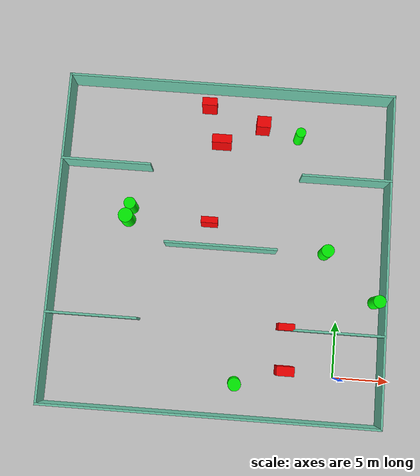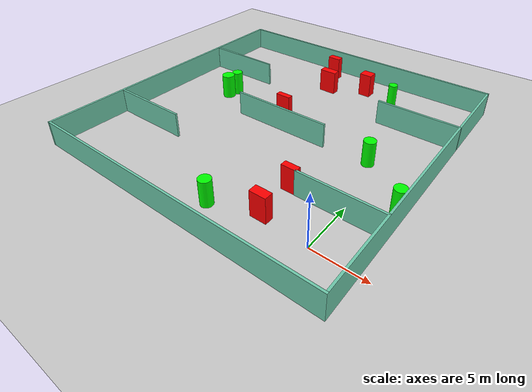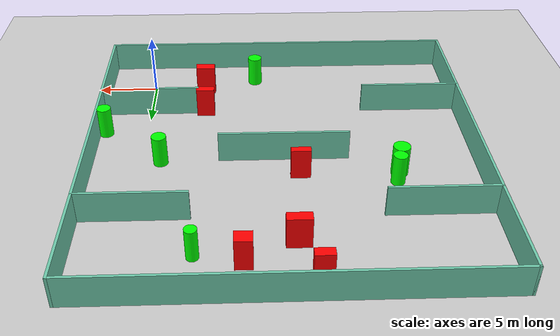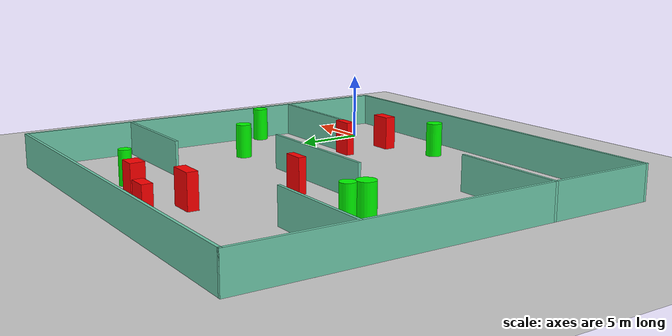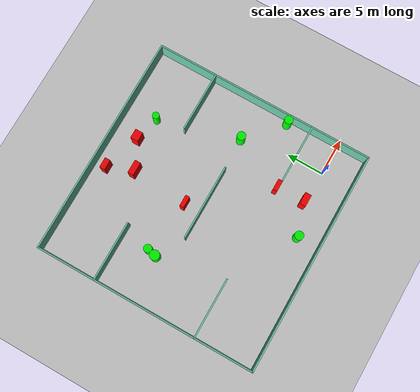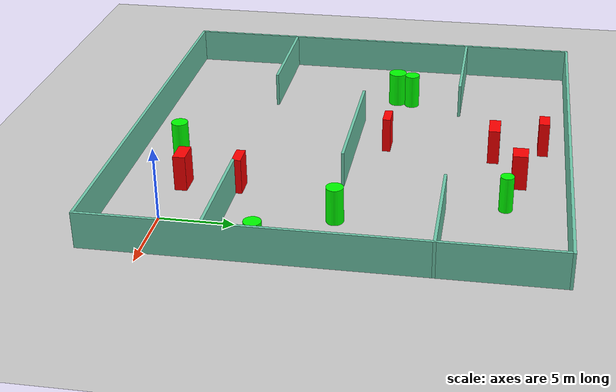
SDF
<sdf version="1.7">
 <world name="default">
  <light name="sun" type="directional">
   <pose>0 0 10 0 -0 0</pose>
   <diffuse>0.8 0.8 0.8 1</diffuse>
   <specular>0.2 0.2 0.2 1</specular>
   <attenuation>
    <range>1000</range>
    <constant>0.9</constant>
    <linear>0.01</linear>
    <quadratic>0.001</quadratic>
   </attenuation>
   <direction>-0.5 0.1 -0.9</direction>
   <spot><inner_angle>0</inner_angle><outer_angle>0</outer_angle><falloff>0</falloff></spot>
  </light>
  <model name="ground_plane">
   <static>1</static>
   <link name="link">
    <collision name="collision">
     <geometry><plane><normal>0 0 1</normal><size>100 100</size></plane></geometry>
     <surface>
      <contact><collide_bitmask>65535</collide_bitmask></contact>
      <friction><ode><mu>100</mu><mu2>50</mu2></ode></friction>
     </surface>
    </collision>
    <visual name="visual">
     <cast_shadows>0</cast_shadows>
     <geometry><plane><normal>0 0 1</normal><size>100 100</size></plane></geometry>
     <material>
      <script><uri>file://media/materials/scripts/gazebo.material</uri><name>Gazebo/Grey</name></script>
     </material>
    </visual>
   </link>
  </model>
  <gravity>0 0 -9.8</gravity>
  <magnetic_field>6e-06 2.3e-05 -4.2e-05</magnetic_field>
  <atmosphere type="adiabatic"/>
  <physics type="ode">
   <max_step_size>0.001</max_step_size>
   <real_time_factor>1</real_time_factor>
   <real_time_update_rate>1000</real_time_update_rate>
  </physics>
  <scene><ambient>0.4 0.4 0.4 1</ambient><background>0.7 0.7 0.7 1</background><shadows>1</shadows></scene>
  <spherical_coordinates>
   <surface_model>EARTH_WGS84</surface_model>
   <latitude_deg>0</latitude_deg>
   <longitude_deg>0</longitude_deg>
   <elevation>0</elevation>
   <heading_deg>0</heading_deg>
  </spherical_coordinates>
  <model name="my_base_walls">
   <link name="Wall_10">
    <collision name="Wall_10_Collision">
     <geometry><box><size>8.2 0.2 2.5</size></box></geometry>
     <pose>0 0 1.25 0 -0 0</pose>
    </collision>
    <visual name="Wall_10_Visual">
     <pose>0 0 1.25 0 -0 0</pose>
     <geometry><box><size>8.2 0.2 2.5</size></box></geometry>
     <material>
      <script><uri>file://media/materials/scripts/gazebo.material</uri><name>Gazebo/Grey</name></script>
      <ambient>0.435294 0.796078 0.67451 1</ambient>
     </material>
     <meta><layer>0</layer></meta>
    </visual>
    <pose>-11 -7 0 0 -0 0</pose>
   </link>
   <link name="Wall_12">
    <collision name="Wall_12_Collision">
     <geometry><box><size>8.2 0.2 2.5</size></box></geometry>
     <pose>0 0 1.25 0 -0 0</pose>
    </collision>
    <visual name="Wall_12_Visual">
     <pose>0 0 1.25 0 -0 0</pose>
     <geometry><box><size>8.2 0.2 2.5</size></box></geometry>
     <material>
      <script><uri>file://media/materials/scripts/gazebo.material</uri><name>Gazebo/Grey</name></script>
      <ambient>0.435294 0.796078 0.67451 1</ambient>
     </material>
     <meta><layer>0</layer></meta>
    </visual>
    <pose>-11 7 0 0 -0 0</pose>
   </link>
   <link name="Wall_14">
    <collision name="Wall_14_Collision">
     <geometry><box><size>8.2 0.2 2.5</size></box></geometry>
     <pose>0 0 1.25 0 -0 0</pose>
    </collision>
    <visual name="Wall_14_Visual">
     <pose>0 0 1.25 0 -0 0</pose>
     <geometry><box><size>8.2 0.2 2.5</size></box></geometry>
     <material>
      <script><uri>file://media/materials/scripts/gazebo.material</uri><name>Gazebo/Grey</name></script>
      <ambient>0.435294 0.796078 0.67451 1</ambient>
     </material>
     <meta><layer>0</layer></meta>
    </visual>
    <pose>11 7 0 0 -0 3.14159</pose>
   </link>
   <link name="Wall_16">
    <collision name="Wall_16_Collision">
     <geometry><box><size>10.2 0.2 2.5</size></box></geometry>
     <pose>0 0 1.25 0 -0 0</pose>
    </collision>
    <visual name="Wall_16_Visual">
     <pose>0 0 1.25 0 -0 0</pose>
     <geometry><box><size>10.2 0.2 2.5</size></box></geometry>
     <material>
      <script><uri>file://media/materials/scripts/gazebo.material</uri><name>Gazebo/Grey</name></script>
      <ambient>0.435294 0.796078 0.67451 1</ambient>
     </material>
     <meta><layer>0</layer></meta>
    </visual>
    <pose>0 0 0 0 -0 3.14159</pose>
   </link>
   <link name="Wall_2">
    <collision name="Wall_2_Collision">
     <geometry><box><size>30.2 0.2 2.5</size></box></geometry>
     <pose>0 0 1.25 0 -0 0</pose>
    </collision>
    <visual name="Wall_2_Visual">
     <pose>0 0 1.25 0 -0 0</pose>
     <geometry><box><size>30.2 0.2 2.5</size></box></geometry>
     <material>
      <script><uri>file://media/materials/scripts/gazebo.material</uri><name>Gazebo/Grey</name></script>
      <ambient>0.435294 0.796078 0.67451 1</ambient>
     </material>
     <meta><layer>0</layer></meta>
    </visual>
    <pose>0 -15 0 0 -0 3.14159</pose>
   </link>
   <link name="Wall_3">
    <collision name="Wall_3_Collision">
     <geometry><box><size>30.2 0.2 2.5</size></box></geometry>
     <pose>0 0 1.25 0 -0 0</pose>
    </collision>
    <visual name="Wall_3_Visual">
     <pose>0 0 1.25 0 -0 0</pose>
     <geometry><box><size>30.2 0.2 2.5</size></box></geometry>
     <material>
      <script><uri>file://media/materials/scripts/gazebo.material</uri><name>Gazebo/Grey</name></script>
      <ambient>0.435294 0.796078 0.67451 1</ambient>
     </material>
     <meta><layer>0</layer></meta>
    </visual>
    <pose>-15 0 0 0 -0 1.5708</pose>
   </link>
   <link name="Wall_4">
    <collision name="Wall_4_Collision">
     <geometry><box><size>30.2 0.2 2.5</size></box></geometry>
     <pose>0 0 1.25 0 -0 0</pose>
    </collision>
    <visual name="Wall_4_Visual">
     <pose>0 0 1.25 0 -0 0</pose>
     <geometry><box><size>30.2 0.2 2.5</size></box></geometry>
     <material>
      <script><uri>file://media/materials/scripts/gazebo.material</uri><name>Gazebo/Grey</name></script>
      <ambient>0.435294 0.796078 0.67451 1</ambient>
     </material>
     <meta><layer>0</layer></meta>
    </visual>
    <pose>0 15 0 0 -0 0</pose>
   </link>
   <link name="Wall_6">
    <collision name="Wall_6_Collision">
     <geometry><box><size>30.2 0.2 2.5</size></box></geometry>
     <pose>0 0 1.25 0 -0 0</pose>
    </collision>
    <visual name="Wall_6_Visual">
     <pose>0 0 1.25 0 -0 0</pose>
     <geometry><box><size>30.2 0.2 2.5</size></box></geometry>
     <material>
      <script><uri>file://media/materials/scripts/gazebo.material</uri><name>Gazebo/Grey</name></script>
      <ambient>0.435294 0.796078 0.67451 1</ambient>
     </material>
     <meta><layer>0</layer></meta>
    </visual>
    <pose>15 0 0 0 -0 1.5708</pose>
   </link>
   <link name="Wall_8">
    <collision name="Wall_8_Collision">
     <geometry><box><size>8.2 0.2 2.5</size></box></geometry>
     <pose>0 0 1.25 0 -0 0</pose>
    </collision>
    <visual name="Wall_8_Visual">
     <pose>0 0 1.25 0 -0 0</pose>
     <geometry><box><size>8.2 0.2 2.5</size></box></geometry>
     <material>
      <script><uri>file://media/materials/scripts/gazebo.material</uri><name>Gazebo/Grey</name></script>
      <ambient>0.435294 0.796078 0.67451 1</ambient>
     </material>
     <meta><layer>0</layer></meta>
    </visual>
    <pose>11 -7 0 0 -0 3.14159</pose>
   </link>
   <static>1</static>
   <pose>-11 11 0 0 -0 0</pose>
  </model>
  <model name="cylinder1">
   <static>1</static>
   <link name="link">
    <inertial>
     <mass>1</mass>
     <inertia><ixx>0.5</ixx><ixy>0</ixy><ixz>0</ixz><iyy>0.5</iyy><iyz>0</iyz><izz>1</izz></inertia>
    </inertial>
    <collision name="collision">
     <geometry><cylinder><radius>0.6608649944928964</radius><length>2.5</length></cylinder></geometry>
    </collision>
    <visual name="visual">
     <geometry><cylinder><radius>0.6608649944928964</radius><length>2.5</length></cylinder></geometry>
     <material>
      <ambient>0 1 0 1</ambient>
      <diffuse>0 1 0 1</diffuse>
      <specular>0.1 0.1 0.1 1</specular>
      <emissive>0 0 0 0</emissive>
     </material>
    </visual>
   </link>
   <pose>-19.764878390552088 13.120100518856916 1.25 0 0 0</pose>
  </model>
  <model name="cylinder2">
   <static>1</static>
   <link name="link">
    <inertial>
     <mass>1</mass>
     <inertia><ixx>0.5</ixx><ixy>0</ixy><ixz>0</ixz><iyy>0.5</iyy><iyz>0</iyz><izz>1</izz></inertia>
    </inertial>
    <collision name="collision">
     <geometry><cylinder><radius>0.45713160234603367</radius><length>2.5</length></cylinder></geometry>
    </collision>
    <visual name="visual">
     <geometry><cylinder><radius>0.45713160234603367</radius><length>2.5</length></cylinder></geometry>
     <material>
      <ambient>0 1 0 1</ambient>
      <diffuse>0 1 0 1</diffuse>
      <specular>0.1 0.1 0.1 1</specular>
      <emissive>0 0 0 0</emissive>
     </material>
    </visual>
   </link>
   <pose>-4.424331350302825 21.94945264448213 1.25 0 0 0</pose>
  </model>
  <model name="cylinder3">
   <static>1</static>
   <link name="link">
    <inertial>
     <mass>1</mass>
     <inertia><ixx>0.5</ixx><ixy>0</ixy><ixz>0</ixz><iyy>0.5</iyy><iyz>0</iyz><izz>1</izz></inertia>
    </inertial>
    <collision name="collision">
     <geometry><cylinder><radius>0.5402350741257805</radius><length>2.5</length></cylinder></geometry>
    </collision>
    <visual name="visual">
     <geometry><cylinder><radius>0.5402350741257805</radius><length>2.5</length></cylinder></geometry>
     <material>
      <ambient>0 1 0 1</ambient>
      <diffuse>0 1 0 1</diffuse>
      <specular>0.1 0.1 0.1 1</specular>
      <emissive>0 0 0 0</emissive>
     </material>
    </visual>
   </link>
   <pose>-19.470908914032314 14.256712987825487 1.25 0 0 0</pose>
  </model>
  <model name="cylinder4">
   <static>1</static>
   <link name="link">
    <inertial>
     <mass>1</mass>
     <inertia><ixx>0.5</ixx><ixy>0</ixy><ixz>0</ixz><iyy>0.5</iyy><iyz>0</iyz><izz>1</izz></inertia>
    </inertial>
    <collision name="collision">
     <geometry><cylinder><radius>0.5829189090516602</radius><length>2.5</length></cylinder></geometry>
    </collision>
    <visual name="visual">
     <geometry><cylinder><radius>0.5829189090516602</radius><length>2.5</length></cylinder></geometry>
     <material>
      <ambient>0 1 0 1</ambient>
      <diffuse>0 1 0 1</diffuse>
      <specular>0.1 0.1 0.1 1</specular>
      <emissive>0 0 0 0</emissive>
     </material>
    </visual>
   </link>
   <pose>-8.911804333207598 -1.0791703227737481 1.25 0 0 0</pose>
  </model>
  <model name="cylinder5">
   <static>1</static>
   <link name="link">
    <inertial>
     <mass>1</mass>
     <inertia><ixx>0.5</ixx><ixy>0</ixy><ixz>0</ixz><iyy>0.5</iyy><iyz>0</iyz><izz>1</izz></inertia>
    </inertial>
    <collision name="collision">
     <geometry><cylinder><radius>0.5792393105012952</radius><length>2.5</length></cylinder></geometry>
    </collision>
    <visual name="visual">
     <geometry><cylinder><radius>0.5792393105012952</radius><length>2.5</length></cylinder></geometry>
     <material>
      <ambient>0 1 0 1</ambient>
      <diffuse>0 1 0 1</diffuse>
      <specular>0.1 0.1 0.1 1</specular>
      <emissive>0 0 0 0</emissive>
     </material>
    </visual>
   </link>
   <pose>-1.3929287378284023 11.229758549561357 1.25 0 0 0</pose>
  </model>
  <model name="cylinder6">
   <static>1</static>
   <link name="link">
    <inertial>
     <mass>1</mass>
     <inertia><ixx>0.5</ixx><ixy>0</ixy><ixz>0</ixz><iyy>0.5</iyy><iyz>0</iyz><izz>1</izz></inertia>
    </inertial>
    <collision name="collision">
     <geometry><cylinder><radius>0.5680287981879821</radius><length>2.5</length></cylinder></geometry>
    </collision>
    <visual name="visual">
     <geometry><cylinder><radius>0.5680287981879821</radius><length>2.5</length></cylinder></geometry>
     <material>
      <ambient>0 1 0 1</ambient>
      <diffuse>0 1 0 1</diffuse>
      <specular>0.1 0.1 0.1 1</specular>
      <emissive>0 0 0 0</emissive>
     </material>
    </visual>
   </link>
   <pose>3.4105260015377183 7.04192552945722 1.25 0 0 0</pose>
  </model>
  <model name="box1">
   <static>1</static>
   <link name="link">
    <inertial>
     <mass>1</mass>
     <inertia><ixx>0.083</ixx><ixy>0</ixy><ixz>0</ixz><iyy>0.083</iyy><iyz>0</iyz><izz>0.083</izz></inertia>
    </inertial>
    <collision name="collision">
     <geometry><box><size>1.8176906250851659 0.7960525843544244 2.5</size></box></geometry>
    </collision>
    <visual name="visual">
     <geometry><box><size>1.8176906250851659 0.7960525843544244 2.5</size></box></geometry>
     <material>
      <ambient>1 0 0 1</ambient>
      <diffuse>1 0 0 1</diffuse>
      <specular>0.1 0.1 0.1 1</specular>
      <emissive>0 0 0 0</emissive>
     </material>
    </visual>
    <sensor name="my_contact" type="contact">
     <contact><collision>box_collision</collision><topic>__default_topic__</topic></contact>
    </sensor>
   </link>
   <pose>-11.601961108887124 20.866437206882253 1.25 0 0 0</pose>
  </model>
  <model name="box2">
   <static>1</static>
   <link name="link">
    <inertial>
     <mass>1</mass>
     <inertia><ixx>0.083</ixx><ixy>0</ixy><ixz>0</ixz><iyy>0.083</iyy><iyz>0</iyz><izz>0.083</izz></inertia>
    </inertial>
    <collision name="collision">
     <geometry><box><size>1.2746717660661855 1.043861996375343 2.5</size></box></geometry>
    </collision>
    <visual name="visual">
     <geometry><box><size>1.2746717660661855 1.043861996375343 2.5</size></box></geometry>
     <material>
      <ambient>1 0 0 1</ambient>
      <diffuse>1 0 0 1</diffuse>
      <specular>0.1 0.1 0.1 1</specular>
      <emissive>0 0 0 0</emissive>
     </material>
    </visual>
    <sensor name="my_contact" type="contact">
     <contact><collision>box_collision</collision><topic>__default_topic__</topic></contact>
    </sensor>
   </link>
   <pose>-7.8557085895365155 22.72941058644562 1.25 0 0 0</pose>
  </model>
  <model name="box3">
   <static>1</static>
   <link name="link">
    <inertial>
     <mass>1</mass>
     <inertia><ixx>0.083</ixx><ixy>0</ixy><ixz>0</ixz><iyy>0.083</iyy><iyz>0</iyz><izz>0.083</izz></inertia>
    </inertial>
    <collision name="collision">
     <geometry><box><size>1.3893698456523151 0.7334373445420577 2.5</size></box></geometry>
    </collision>
    <visual name="visual">
     <geometry><box><size>1.3893698456523151 0.7334373445420577 2.5</size></box></geometry>
     <material>
      <ambient>1 0 0 1</ambient>
      <diffuse>1 0 0 1</diffuse>
      <specular>0.1 0.1 0.1 1</specular>
      <emissive>0 0 0 0</emissive>
     </material>
    </visual>
    <sensor name="my_contact" type="contact">
     <contact><collision>box_collision</collision><topic>__default_topic__</topic></contact>
    </sensor>
   </link>
   <pose>-12.976645430506192 24.304468566855533 1.25 0 0 0</pose>
  </model>
  <model name="box4">
   <static>1</static>
   <link name="link">
    <inertial>
     <mass>1</mass>
     <inertia><ixx>0.083</ixx><ixy>0</ixy><ixz>0</ixz><iyy>0.083</iyy><iyz>0</iyz><izz>0.083</izz></inertia>
    </inertial>
    <collision name="collision">
     <geometry><box><size>1.5256121046803186 0.5661241453085959 2.5</size></box></geometry>
    </collision>
    <visual name="visual">
     <geometry><box><size>1.5256121046803186 0.5661241453085959 2.5</size></box></geometry>
     <material>
      <ambient>1 0 0 1</ambient>
      <diffuse>1 0 0 1</diffuse>
      <specular>0.1 0.1 0.1 1</specular>
      <emissive>0 0 0 0</emissive>
     </material>
    </visual>
    <sensor name="my_contact" type="contact">
     <contact><collision>box_collision</collision><topic>__default_topic__</topic></contact>
    </sensor>
   </link>
   <pose>-12.180753720228294 13.257588088168177 1.25 0 0 0</pose>
  </model>
  <model name="box5">
   <static>1</static>
   <link name="link">
    <inertial>
     <mass>1</mass>
     <inertia><ixx>0.083</ixx><ixy>0</ixy><ixz>0</ixz><iyy>0.083</iyy><iyz>0</iyz><izz>0.083</izz></inertia>
    </inertial>
    <collision name="collision">
     <geometry><box><size>1.4757481795723664 0.6242570477095013 2.5</size></box></geometry>
    </collision>
    <visual name="visual">
     <geometry><box><size>1.4757481795723664 0.6242570477095013 2.5</size></box></geometry>
     <material>
      <ambient>1 0 0 1</ambient>
      <diffuse>1 0 0 1</diffuse>
      <specular>0.1 0.1 0.1 1</specular>
      <emissive>0 0 0 0</emissive>
     </material>
    </visual>
    <sensor name="my_contact" type="contact">
     <contact><collision>box_collision</collision><topic>__default_topic__</topic></contact>
    </sensor>
   </link>
   <pose>-4.670866292521737 4.21410492353202 1.25 0 0 0</pose>
  </model>
  <model name="box6">
   <static>1</static>
   <link name="link">
    <inertial>
     <mass>1</mass>
     <inertia><ixx>0.083</ixx><ixy>0</ixy><ixz>0</ixz><iyy>0.083</iyy><iyz>0</iyz><izz>0.083</izz></inertia>
    </inertial>
    <collision name="collision">
     <geometry><box><size>1.5923532867744004 0.8458782124930884 2.5</size></box></geometry>
    </collision>
    <visual name="visual">
     <geometry><box><size>1.5923532867744004 0.8458782124930884 2.5</size></box></geometry>
     <material>
      <ambient>1 0 0 1</ambient>
      <diffuse>1 0 0 1</diffuse>
      <specular>0.1 0.1 0.1 1</specular>
      <emissive>0 0 0 0</emissive>
     </material>
    </visual>
    <sensor name="my_contact" type="contact">
     <contact><collision>box_collision</collision><topic>__default_topic__</topic></contact>
    </sensor>
   </link>
   <pose>-4.5565150757584085 0.3662446090503595 1.25 0 0 0</pose>
  </model>
 </world>
</sdf>
